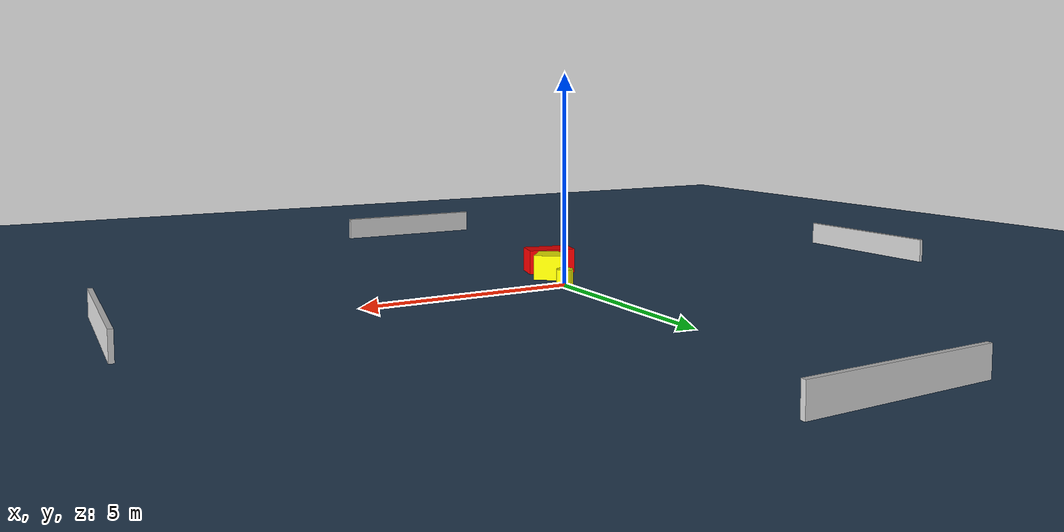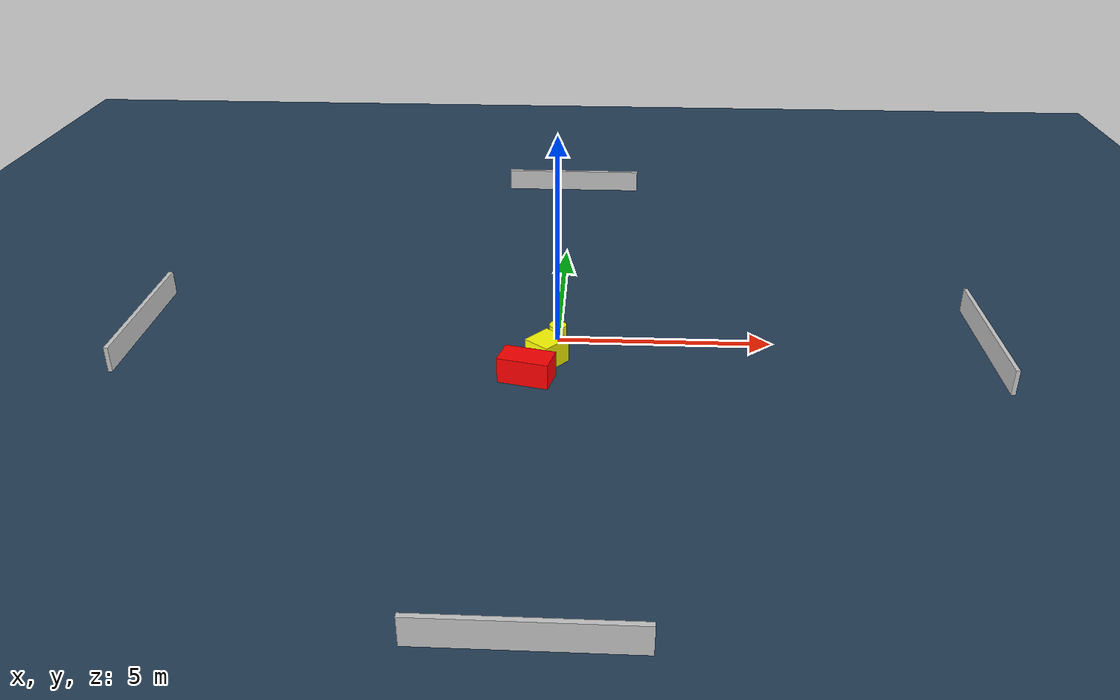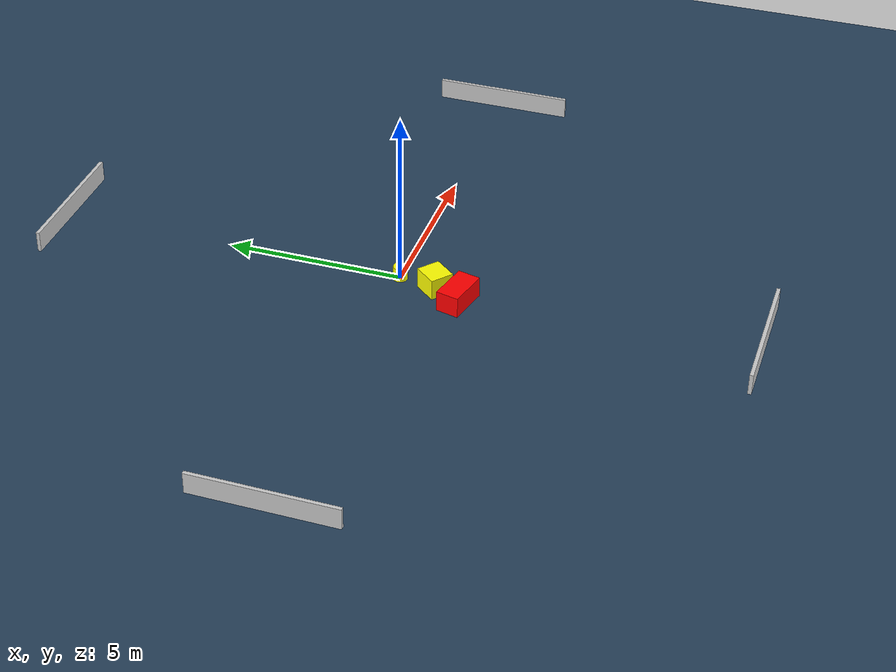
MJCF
<?xml version="1.0" ?>
<mujoco model="generated_environment">
  <option timestep="0.01" integrator="RK4" cone="elliptic"/>
  <default>
    <geom density="1"/>
  </default>
  <asset>
    <texture builtin="gradient" height="3072" name="skybox" rgb1="0.3 0.5 0.7" rgb2="0 0 0" type="skybox" width="512"/>
    <texture builtin="checker" height="300" name="groundplane" rgb1="0.2 0.3 0.4" rgb2="0.1 0.2 0.3" type="2d" width="300"/>
    <material name="groundplane" reflectance="0.2" texrepeat="5 5" texture="groundplane"/>
  </asset>
  <worldbody>
    <light dir="0 0 -1" directional="true" pos="0 0 1.5"/>
    <geom condim="3" friction="0.5 0.005 0.001" material="groundplane" name="floor" pos="0 0 0" size="0 0 0.05" type="plane"/>
    <body name="walls">
      <geom name="wall_1" condim="4" pos="-10.0 0.0 0.3" rgba="0.800000011920929 0.800000011920929 0.800000011920929 1.0" size="0.05 2.0 0.3" type="box"/>
      <geom name="wall_2" condim="4" pos="10.0 0.0 0.3" rgba="0.800000011920929 0.800000011920929 0.800000011920929 1.0" size="0.05 2.0 0.3" type="box"/>
      <geom name="wall_3" condim="4" pos="0.0 -10.0 0.3" rgba="0.800000011920929 0.800000011920929 0.800000011920929 1.0" size="2.0 0.05 0.3" type="box"/>
      <geom name="wall_4" condim="4" pos="0.0 10.0 0.3" rgba="0.800000011920929 0.800000011920929 0.800000011920929 1.0" size="2.0 0.05 0.3" type="box"/>
    </body>
    <body name="robot">
      <joint name="joint_x" type="slide" pos="0 0 0" axis="1 0 0"/>
      <joint name="joint_y" type="slide" pos="0 0 0" axis="0 1 0"/>
      <geom name="robot" type="cylinder" pos="0.0 0.0 0.2" size="0.2 0.2 0.0" mass="5.0" friction="1.0 0.005 0.0001" condim="4" rgba="1.0 1.0 0.0 1.0"/>
    </body>
    <body name="obstacle_1_movable">
      <geom name="obstacle_1_movable" condim="4" pos="-0.19936326956577843 -1.0588721868972373 0.3" euler="0 0 230.51353882815607" friction="0.0 0.005 0.001" rgba="1.0 1.0 0.0 1.0" size="0.36192647353347146 0.33639055285169256 0.3" type="box" mass="0.1"/>
      <joint type="free"/>
    </body>
    <body name="obstacle_2_static">
      <geom name="obstacle_2_static" condim="4" pos="-0.605180015884098 -1.8424296125688904 0.3" euler="0 0 76.64040410651094" friction="0.0 0.005 0.001" rgba="1.0 0.0 0.0 1.0" size="0.32416285322023985 0.5862970789168419 0.3" type="box"/>
    </body>
  </worldbody>
  <actuator>
    <motor name="actuator_x" joint="joint_x" gear="1" ctrlrange="-1 1"/>
    <motor name="actuator_y" joint="joint_y" gear="1" ctrlrange="-1 1"/>
  </actuator>
</mujoco>
